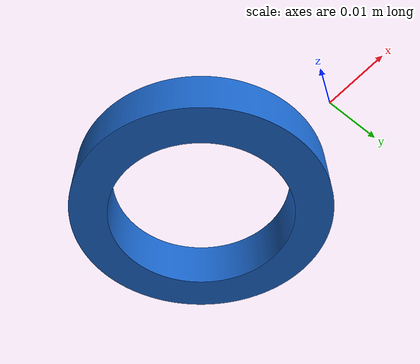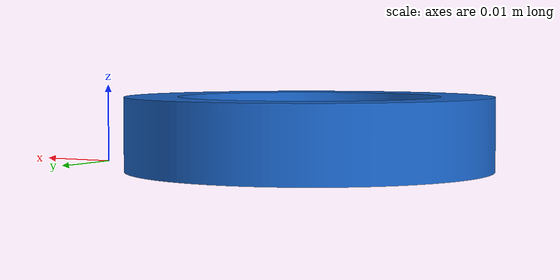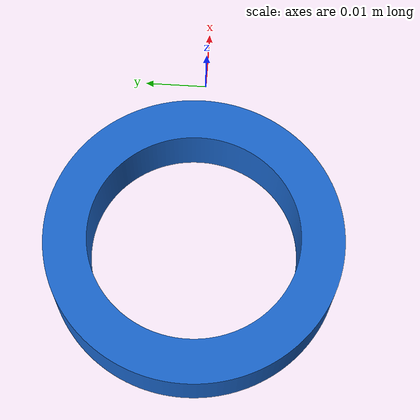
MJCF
<mujoco model="o_piece">
  <asset>
    <mesh file="/Users/killuaa/Desktop/mujoco_sim/self_environment/stl_things/files/O_env.stl" name="o_mesh" scale="0.002 0.002 0.003"/>  <!-- Adjust to 0.8 if STL in meters -->
    <texture file="/Users/killuaa/Desktop/mujoco_sim/self_environment/stl_things/images/Part_Studio_1_-_o_x5.png" type="2d" name="tex-o" />
    <material name="o_material" reflectance="0.7" rgba="0.1 0.4 0.8 1"/>
  </asset>
  <worldbody>
    <body>
      <body name="object">
        <!-- Visual geom: Mesh for appearance, no contacts -->
        <geom pos="0 0 0" mesh="o_mesh" type="mesh" material="o_material" group="1" contype="0" conaffinity="0"/>
        <!-- Collision geom: Approximate O with cylinder for convexity (adjust size) -->
        <geom pos="0 0 0" type="cylinder" size="0.01 0.0075" solimp="0.998 0.998 0.001" solref="0.001 1" density="1000" friction="0.95 0.3 0.1" group="0" condim="4" rgba="0 0 0 0"/>  <!-- Radius and half-height -->
        <inertial pos="0 0 0" mass="0.1" diaginertia="0.001 0.001 0.001"/>  <!-- Adjust mass based on size -->
      </body>
      <site rgba="0 0 0 0" size="0.005" pos="0 0 -0.0075" name="bottom_site"/>  <!-- Measure from mesh -->
      <site rgba="0 0 0 0" size="0.005" pos="0 0 0.075" name="top_site"/>
      <site rgba="0 0 0 0" size="0.005" pos="0.03 0.03 0" name="horizontal_radius_site"/>  <!-- Adjust to actual radius -->
    </body>
  </worldbody>
</mujoco>
